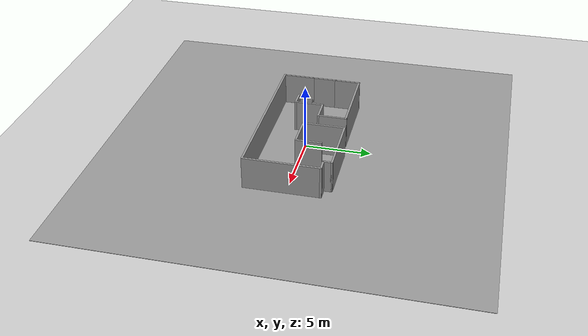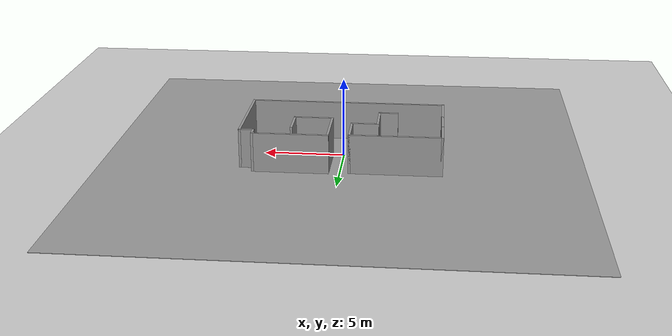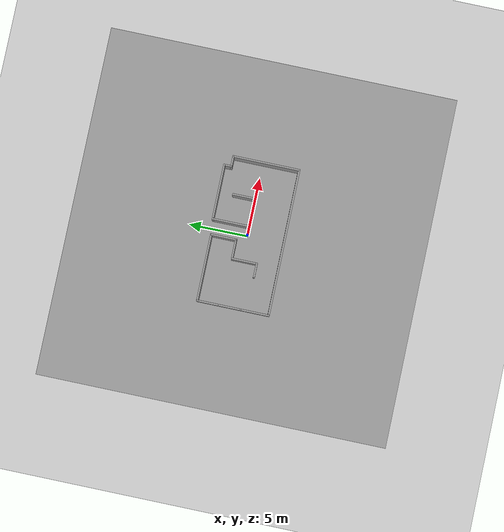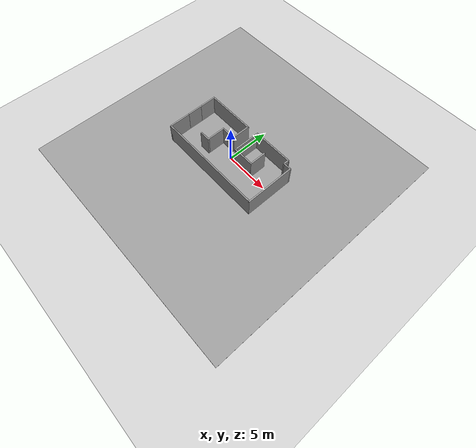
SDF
<?xml version="1.0" ?>
<sdf version="1.6">
  <world name="room2_world">
    <!-- 基础物理引擎 -->
    <physics type="ode">
      <real_time_update_rate>1000</real_time_update_rate>
      <max_step_size>0.001</max_step_size>
    </physics>

    <!-- 场景光照与背景 -->
    <scene>
      <ambient>0.4 0.4 0.4 1</ambient>
      <background>0.7 0.7 0.7 1</background>
      <shadows>true</shadows>
    </scene>
    <light name="sun" type="directional">
      <cast_shadows>true</cast_shadows>
      <pose>0 0 10 0 0 0</pose>
      <diffuse>0.8 0.8 0.8 1</diffuse>
      <specular>0.2 0.2 0.2 1</specular>
      <direction>-0.5 0.1 -0.9</direction>
    </light>

    <!-- 引入默认地面（防止模型掉入虚空） -->
    <include>
      <uri>model://ground_plane</uri>
    </include>

    <!-- ⭐ 核心：通过 model:// 协议引入你的房间模型 -->
    <include>
      <uri>model://room2</uri>
      <pose>0 0 0 0 0 0</pose>
    </include>
  </world>
</sdf>

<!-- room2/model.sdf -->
<sdf version='1.7'>
  <model name='room2'>
    <pose>4.015 -1.05 0 0 -0 0</pose>

    <!-- ==================== 地面 (新增) ==================== -->
    <link name='ground_plane'>
      <collision name='ground_collision'>
        <geometry>
          <plane>
            <normal>0 0 1</normal>
            <size>30 30</size>
          </plane>
        </geometry>
        <surface>
          <friction>
            <ode>
              <mu>100</mu>
              <mu2>50</mu2>
            </ode>
          </friction>
        </surface>
      </collision>
      <visual name='ground_visual'>
        <geometry>
          <plane>
            <normal>0 0 1</normal>
            <size>30 30</size>
          </plane>
        </geometry>
        <material>
          <script>
            <uri>file://media/materials/scripts/gazebo.material</uri>
            <name>Gazebo/Grey</name>
          </script>
        </material>
      </visual>
    </link>

    <!-- ==================== 墙体 ==================== -->
    <link name='Wall_0'>
      <collision name='Wall_0_Collision'>
        <geometry>
          <box>
            <size>2.5 0.15 2.5</size>
          </box>
        </geometry>
        <pose>0 0 1.25 0 -0 0</pose>
      </collision>
      <visual name='Wall_0_Visual'>
        <pose>0 0 1.25 0 -0 0</pose>
        <geometry>
          <box>
            <size>2.5 0.15 2.5</size>
          </box>
        </geometry>
        <material>
          <script>
            <uri>file://media/materials/scripts/gazebo.material</uri>
            <name>Gazebo/Grey</name>
          </script>
          <ambient>1 1 1 1</ambient>
        </material>
        <meta>
          <layer>0</layer>
        </meta>
      </visual>
      <pose>-6.175 -1.925 0 0 -0 -1.5708</pose>
    </link>

    <link name='Wall_10'>
      <collision name='Wall_10_Collision'>
        <geometry>
          <box>
            <size>12.5 0.15 2.5</size>
          </box>
        </geometry>
        <pose>0 0 1.25 0 -0 0</pose>
      </collision>
      <visual name='Wall_10_Visual'>
        <pose>0 0 1.25 0 -0 0</pose>
        <geometry>
          <box>
            <size>12.5 0.15 2.5</size>
          </box>
        </geometry>
        <material>
          <script>
            <uri>file://media/materials/scripts/gazebo.material</uri>
            <name>Gazebo/Grey</name>
          </script>
          <ambient>1 1 1 1</ambient>
        </material>
        <meta>
          <layer>0</layer>
        </meta>
      </visual>
      <pose>-0 -3.1 0 0 -0 0</pose>
    </link>

    <link name='Wall_11'>
      <collision name='Wall_11_Collision'>
        <geometry>
          <box>
            <size>5.75 0.15 2.5</size>
          </box>
        </geometry>
        <pose>0 0 1.25 0 -0 0</pose>
      </collision>
      <visual name='Wall_11_Visual'>
        <pose>0 0 1.25 0 -0 0</pose>
        <geometry>
          <box>
            <size>5.75 0.15 2.5</size>
          </box>
        </geometry>
        <material>
          <script>
            <uri>file://media/materials/scripts/gazebo.material</uri>
            <name>Gazebo/Grey</name>
          </script>
          <ambient>1 1 1 1</ambient>
        </material>
        <meta>
          <layer>0</layer>
        </meta>
      </visual>
      <pose>6.175 -0.3 0 0 -0 1.5708</pose>
    </link>

    <link name='Wall_12'>
      <collision name='Wall_12_Collision'>
        <geometry>
          <box>
            <size>1 0.15 2.5</size>
          </box>
        </geometry>
        <pose>0 0 1.25 0 -0 0</pose>
      </collision>
      <visual name='Wall_12_Visual'>
        <pose>0 0 1.25 0 -0 0</pose>
        <geometry>
          <box>
            <size>1 0.15 2.5</size>
          </box>
        </geometry>
        <material>
          <script>
            <uri>file://media/materials/scripts/gazebo.material</uri>
            <name>Gazebo/Grey</name>
          </script>
          <ambient>1 1 1 1</ambient>
        </material>
        <meta>
          <layer>0</layer>
        </meta>
      </visual>
      <pose>5.75 2.5 0 0 -0 3.14159</pose>
    </link>

    <link name='Wall_13'>
      <collision name='Wall_13_Collision'>
        <geometry>
          <box>
            <size>0.75 0.15 2.5</size>
          </box>
        </geometry>
        <pose>0 0 1.25 0 -0 0</pose>
      </collision>
      <visual name='Wall_13_Visual'>
        <pose>0 0 1.25 0 -0 0</pose>
        <geometry>
          <box>
            <size>0.75 0.15 2.5</size>
          </box>
        </geometry>
        <material>
          <script>
            <uri>file://media/materials/scripts/gazebo.material</uri>
            <name>Gazebo/Grey</name>
          </script>
          <ambient>1 1 1 1</ambient>
        </material>
        <meta>
          <layer>0</layer>
        </meta>
      </visual>
      <pose>5.325 2.8 0 0 -0 1.5708</pose>
    </link>

    <link name='Wall_14'>
      <collision name='Wall_14_Collision'>
        <geometry>
          <box>
            <size>4.75 0.15 2.5</size>
          </box>
        </geometry>
        <pose>0 0 1.25 0 -0 0</pose>
      </collision>
      <visual name='Wall_14_Visual'>
        <pose>0 0 1.25 0 -0 0</pose>
        <geometry>
          <box>
            <size>4.75 0.15 2.5</size>
          </box>
        </geometry>
        <material>
          <script>
            <uri>file://media/materials/scripts/gazebo.material</uri>
            <name>Gazebo/Grey</name>
          </script>
          <ambient>1 1 1 1</ambient>
        </material>
        <meta>
          <layer>0</layer>
        </meta>
      </visual>
      <pose>3.025 3.1 0 0 -0 3.14159</pose>
    </link>

    <link name='Wall_15'>
      <collision name='Wall_15_Collision'>
        <geometry>
          <box>
            <size>3.25 0.15 2.5</size>
          </box>
        </geometry>
        <pose>0 0 1.25 0 -0 0</pose>
      </collision>
      <visual name='Wall_15_Visual'>
        <pose>0 0 1.25 0 -0 0</pose>
        <geometry>
          <box>
            <size>3.25 0.15 2.5</size>
          </box>
        </geometry>
        <material>
          <script>
            <uri>file://media/materials/scripts/gazebo.material</uri>
            <name>Gazebo/Grey</name>
          </script>
          <ambient>1 1 1 1</ambient>
        </material>
        <meta>
          <layer>0</layer>
        </meta>
      </visual>
      <pose>0.725 1.55 0 0 -0 -1.5708</pose>
    </link>

    <link name='Wall_16'>
      <collision name='Wall_16_Collision'>
        <geometry>
          <box>
            <size>2.5 0.15 2.5</size>
          </box>
        </geometry>
        <pose>0 0 1.25 0 -0 0</pose>
      </collision>
      <visual name='Wall_16_Visual'>
        <pose>0 0 1.25 0 -0 0</pose>
        <geometry>
          <box>
            <size>2.5 0.15 2.5</size>
          </box>
        </geometry>
        <material>
          <script>
            <uri>file://media/materials/scripts/gazebo.material</uri>
            <name>Gazebo/Grey</name>
          </script>
          <ambient>1 1 1 1</ambient>
        </material>
        <meta>
          <layer>0</layer>
        </meta>
      </visual>
      <pose>1.9 0 0 0 -0 0</pose>
    </link>

    <link name='Wall_17'>
      <collision name='Wall_17_Collision'>
        <geometry>
          <box>
            <size>2 0.15 2.5</size>
          </box>
        </geometry>
        <pose>0 0 1.25 0 -0 0</pose>
      </collision>
      <visual name='Wall_17_Visual'>
        <pose>0 0 1.25 0 -0 0</pose>
        <geometry>
          <box>
            <size>2 0.15 2.5</size>
          </box>
        </geometry>
        <material>
          <script>
            <uri>file://media/materials/scripts/gazebo.material</uri>
            <name>Gazebo/Grey</name>
          </script>
          <ambient>1 1 1 1</ambient>
        </material>
        <meta>
          <layer>0</layer>
        </meta>
      </visual>
      <pose>3.075 0.925 0 0 -0 1.5708</pose>
    </link>

    <link name='Wall_2'>
      <collision name='Wall_2_Collision'>
        <geometry>
          <box>
            <size>2 0.15 2.5</size>
          </box>
        </geometry>
        <pose>0 0 1.25 0 -0 0</pose>
      </collision>
      <visual name='Wall_2_Visual'>
        <pose>0 0 1.25 0 -0 0</pose>
        <geometry>
          <box>
            <size>2 0.15 2.5</size>
          </box>
        </geometry>
        <material>
          <script>
            <uri>file://media/materials/scripts/gazebo.material</uri>
            <name>Gazebo/Grey</name>
          </script>
          <ambient>1 1 1 1</ambient>
        </material>
        <meta>
          <layer>0</layer>
        </meta>
      </visual>
      <pose>-6.175 0.175 0 0 -0 1.5708</pose>
    </link>

    <link name='Wall_3'>
      <collision name='Wall_3_Collision'>
        <geometry>
          <box>
            <size>2 0.15 2.5</size>
          </box>
        </geometry>
        <pose>0 0 1.25 0 -0 0</pose>
      </collision>
      <visual name='Wall_3_Visual'>
        <pose>0 0 1.25 0 -0 0</pose>
        <geometry>
          <box>
            <size>2 0.15 2.5</size>
          </box>
        </geometry>
        <material>
          <script>
            <uri>file://media/materials/scripts/gazebo.material</uri>
            <name>Gazebo/Grey</name>
          </script>
          <ambient>1 1 1 1</ambient>
        </material>
        <meta>
          <layer>0</layer>
        </meta>
      </visual>
      <pose>-6.175 2.025 0 0 -0 1.5708</pose>
    </link>

    <link name='Wall_4'>
      <collision name='Wall_4_Collision'>
        <geometry>
          <box>
            <size>5.75 0.15 2.5</size>
          </box>
        </geometry>
        <pose>0 0 1.25 0 -0 0</pose>
      </collision>
      <visual name='Wall_4_Visual'>
        <pose>0 0 1.25 0 -0 0</pose>
        <geometry>
          <box>
            <size>5.75 0.15 2.5</size>
          </box>
        </geometry>
        <material>
          <script>
            <uri>file://media/materials/scripts/gazebo.material</uri>
            <name>Gazebo/Grey</name>
          </script>
          <ambient>1 1 1 1</ambient>
        </material>
        <meta>
          <layer>0</layer>
        </meta>
      </visual>
      <pose>-3.375 2.95 0 0 -0 0</pose>
    </link>

    <link name='Wall_5'>
      <collision name='Wall_5_Collision'>
        <geometry>
          <box>
            <size>2.25 0.15 2.5</size>
          </box>
        </geometry>
        <pose>0 0 1.25 0 -0 0</pose>
      </collision>
      <visual name='Wall_5_Visual'>
        <pose>0 0 1.25 0 -0 0</pose>
        <geometry>
          <box>
            <size>2.25 0.15 2.5</size>
          </box>
        </geometry>
        <material>
          <script>
            <uri>file://media/materials/scripts/gazebo.material</uri>
            <name>Gazebo/Grey</name>
          </script>
          <ambient>1 1 1 1</ambient>
        </material>
        <meta>
          <layer>0</layer>
        </meta>
      </visual>
      <pose>-0.575 1.9 0 0 -0 -1.5708</pose>
    </link>

    <link name='Wall_6'>
      <collision name='Wall_6_Collision'>
        <geometry>
          <box>
            <size>1.75 0.15 2.5</size>
          </box>
        </geometry>
        <pose>0 0 1.25 0 -0 0</pose>
      </collision>
      <visual name='Wall_6_Visual'>
        <pose>0 0 1.25 0 -0 0</pose>
        <geometry>
          <box>
            <size>1.75 0.15 2.5</size>
          </box>
        </geometry>
        <material>
          <script>
            <uri>file://media/materials/scripts/gazebo.material</uri>
            <name>Gazebo/Grey</name>
          </script>
          <ambient>1 1 1 1</ambient>
        </material>
        <meta>
          <layer>0</layer>
        </meta>
      </visual>
      <pose>-1.375 0.85 0 0 -0 3.14159</pose>
    </link>

    <link name='Wall_7'>
      <collision name='Wall_7_Collision'>
        <geometry>
          <box>
            <size>2.25 0.15 2.5</size>
          </box>
        </geometry>
        <pose>0 0 1.25 0 -0 0</pose>
      </collision>
      <visual name='Wall_7_Visual'>
        <pose>0 0 1.25 0 -0 0</pose>
        <geometry>
          <box>
            <size>2.25 0.15 2.5</size>
          </box>
        </geometry>
        <material>
          <script>
            <uri>file://media/materials/scripts/gazebo.material</uri>
            <name>Gazebo/Grey</name>
          </script>
          <ambient>1 1 1 1</ambient>
        </material>
        <meta>
          <layer>0</layer>
        </meta>
      </visual>
      <pose>-2.175 -0.2 0 0 -0 -1.5708</pose>
    </link>

    <link name='Wall_8'>
      <collision name='Wall_8_Collision'>
        <geometry>
          <box>
            <size>1.25 0.15 2.5</size>
          </box>
        </geometry>
        <pose>0 0 1.25 0 -0 0</pose>
      </collision>
      <visual name='Wall_8_Visual'>
        <pose>0 0 1.25 0 -0 0</pose>
        <geometry>
          <box>
            <size>1.25 0.15 2.5</size>
          </box>
        </geometry>
        <material>
          <script>
            <uri>file://media/materials/scripts/gazebo.material</uri>
            <name>Gazebo/Grey</name>
          </script>
          <ambient>1 1 1 1</ambient>
        </material>
        <meta>
          <layer>0</layer>
        </meta>
      </visual>
      <pose>-2.725 -1.25 0 0 -0 3.14159</pose>
    </link>

    <static>1</static>
  </model>
</sdf>
